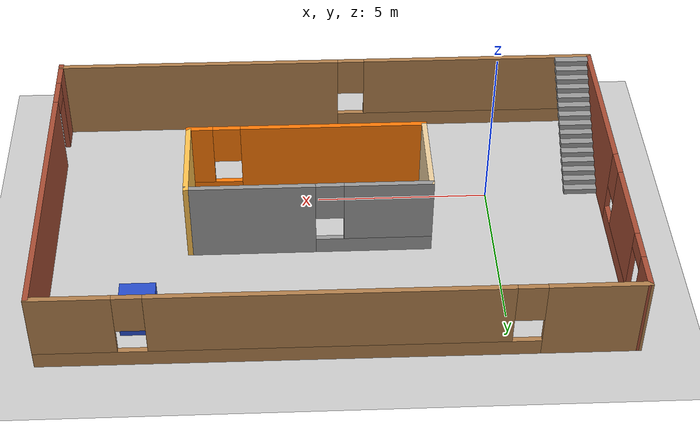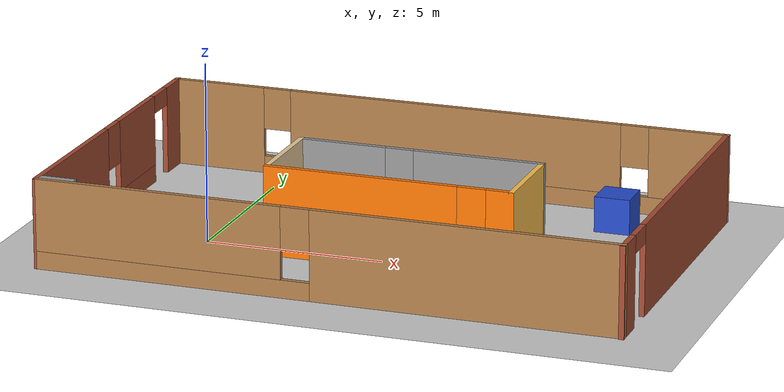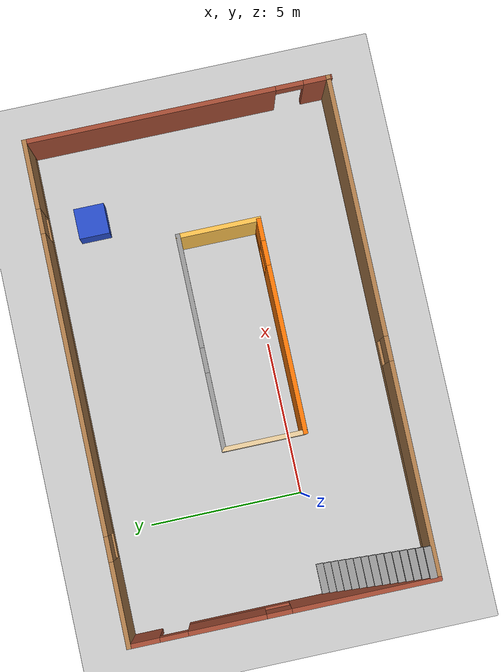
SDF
<sdf version="1.6">
 <world name="default">
  <light name="sun" type="directional">
   <pose>0 0 10 0 -0 0</pose>
   <diffuse>0.8 0.8 0.8 1</diffuse>
   <specular>0.2 0.2 0.2 1</specular>
   <attenuation>
    <range>1000</range>
    <constant>0.9</constant>
    <linear>0.01</linear>
    <quadratic>0.001</quadratic>
   </attenuation>
   <direction>-0.5 0.1 -0.9</direction>
  </light>
  <model name="ground_plane">
   <static>1</static>
   <link name="link">
    <collision name="collision">
     <geometry><plane><normal>0 0 1</normal><size>100 100</size></plane></geometry>
     <surface>
      <contact><collide_bitmask>65535</collide_bitmask></contact>
      <friction><ode><mu>100</mu><mu2>50</mu2></ode></friction>
     </surface>
    </collision>
    <visual name="visual">
     <cast_shadows>0</cast_shadows>
     <geometry><plane><normal>0 0 1</normal><size>100 100</size></plane></geometry>
     <material>
      <script><uri>file://media/materials/scripts/gazebo.material</uri><name>Gazebo/Grey</name></script>
     </material>
    </visual>
   </link>
  </model>
  <gravity>0 0 -9.8</gravity>
  <magnetic_field>6e-06 2.3e-05 -4.2e-05</magnetic_field>
  <atmosphere type="adiabatic"/>
  <physics name="default_physics" default="0" type="ode">
   <max_step_size>0.001</max_step_size>
   <real_time_factor>1</real_time_factor>
   <real_time_update_rate>1000</real_time_update_rate>
  </physics>
  <scene><ambient>0.4 0.4 0.4 1</ambient><background>0.7 0.7 0.7 1</background><shadows>1</shadows></scene>
  <spherical_coordinates>
   <surface_model>EARTH_WGS84</surface_model>
   <latitude_deg>0</latitude_deg>
   <longitude_deg>0</longitude_deg>
   <elevation>0</elevation>
   <heading_deg>0</heading_deg>
  </spherical_coordinates>
  <model name="mySimulatedWorld1">
   <pose>4.6487 1.35243 0 0 -0 0</pose>
   <link name="Stairs_0">
    <visual name="Stairs_0_Visual_0">
     <pose>-7.51944 -1.44614 0.083333 0 -0 0</pose>
     <geometry><box><size>1 0.233333 0.166667</size></box></geometry>
     <material>
      <script><uri>file://media/materials/scripts/gazebo.material</uri><name>Gazebo/Grey</name></script>
      <ambient>1 1 1 1</ambient>
     </material>
     <meta><layer>0</layer></meta>
    </visual>
    <collision name="Stairs_0_Collision_0">
     <geometry><box><size>1 0.233333 0.166667</size></box></geometry>
     <pose>-7.51944 -1.44614 0.083333 0 -0 0</pose>
    </collision>
    <visual name="Stairs_0_Visual_1">
     <pose>-7.51944 -1.67948 0.25 0 -0 0</pose>
     <geometry><box><size>1 0.233333 0.166667</size></box></geometry>
     <material>
      <script><uri>file://media/materials/scripts/gazebo.material</uri><name>Gazebo/Grey</name></script>
      <ambient>1 1 1 1</ambient>
     </material>
     <meta><layer>0</layer></meta>
    </visual>
    <collision name="Stairs_0_Collision_1">
     <geometry><box><size>1 0.233333 0.166667</size></box></geometry>
     <pose>-7.51944 -1.67948 0.25 0 -0 0</pose>
    </collision>
    <visual name="Stairs_0_Visual_2">
     <pose>-7.51944 -1.91281 0.416667 0 -0 0</pose>
     <geometry><box><size>1 0.233333 0.166667</size></box></geometry>
     <material>
      <script><uri>file://media/materials/scripts/gazebo.material</uri><name>Gazebo/Grey</name></script>
      <ambient>1 1 1 1</ambient>
     </material>
     <meta><layer>0</layer></meta>
    </visual>
    <collision name="Stairs_0_Collision_2">
     <geometry><box><size>1 0.233333 0.166667</size></box></geometry>
     <pose>-7.51944 -1.91281 0.416667 0 -0 0</pose>
    </collision>
    <visual name="Stairs_0_Visual_3">
     <pose>-7.51944 -2.14614 0.583333 0 -0 0</pose>
     <geometry><box><size>1 0.233333 0.166667</size></box></geometry>
     <material>
      <script><uri>file://media/materials/scripts/gazebo.material</uri><name>Gazebo/Grey</name></script>
      <ambient>1 1 1 1</ambient>
     </material>
     <meta><layer>0</layer></meta>
    </visual>
    <collision name="Stairs_0_Collision_3">
     <geometry><box><size>1 0.233333 0.166667</size></box></geometry>
     <pose>-7.51944 -2.14614 0.583333 0 -0 0</pose>
    </collision>
    <visual name="Stairs_0_Visual_4">
     <pose>-7.51944 -2.37948 0.75 0 -0 0</pose>
     <geometry><box><size>1 0.233333 0.166667</size></box></geometry>
     <material>
      <script><uri>file://media/materials/scripts/gazebo.material</uri><name>Gazebo/Grey</name></script>
      <ambient>1 1 1 1</ambient>
     </material>
     <meta><layer>0</layer></meta>
    </visual>
    <collision name="Stairs_0_Collision_4">
     <geometry><box><size>1 0.233333 0.166667</size></box></geometry>
     <pose>-7.51944 -2.37948 0.75 0 -0 0</pose>
    </collision>
    <visual name="Stairs_0_Visual_5">
     <pose>-7.51944 -2.61281 0.916667 0 -0 0</pose>
     <geometry><box><size>1 0.233333 0.166667</size></box></geometry>
     <material>
      <script><uri>file://media/materials/scripts/gazebo.material</uri><name>Gazebo/Grey</name></script>
      <ambient>1 1 1 1</ambient>
     </material>
     <meta><layer>0</layer></meta>
    </visual>
    <collision name="Stairs_0_Collision_5">
     <geometry><box><size>1 0.233333 0.166667</size></box></geometry>
     <pose>-7.51944 -2.61281 0.916667 0 -0 0</pose>
    </collision>
    <visual name="Stairs_0_Visual_6">
     <pose>-7.51944 -2.84614 1.08333 0 -0 0</pose>
     <geometry><box><size>1 0.233333 0.166667</size></box></geometry>
     <material>
      <script><uri>file://media/materials/scripts/gazebo.material</uri><name>Gazebo/Grey</name></script>
      <ambient>1 1 1 1</ambient>
     </material>
     <meta><layer>0</layer></meta>
    </visual>
    <collision name="Stairs_0_Collision_6">
     <geometry><box><size>1 0.233333 0.166667</size></box></geometry>
     <pose>-7.51944 -2.84614 1.08333 0 -0 0</pose>
    </collision>
    <visual name="Stairs_0_Visual_7">
     <pose>-7.51944 -3.07948 1.25 0 -0 0</pose>
     <geometry><box><size>1 0.233333 0.166667</size></box></geometry>
     <material>
      <script><uri>file://media/materials/scripts/gazebo.material</uri><name>Gazebo/Grey</name></script>
      <ambient>1 1 1 1</ambient>
     </material>
     <meta><layer>0</layer></meta>
    </visual>
    <collision name="Stairs_0_Collision_7">
     <geometry><box><size>1 0.233333 0.166667</size></box></geometry>
     <pose>-7.51944 -3.07948 1.25 0 -0 0</pose>
    </collision>
    <visual name="Stairs_0_Visual_8">
     <pose>-7.51944 -3.31281 1.41667 0 -0 0</pose>
     <geometry><box><size>1 0.233333 0.166667</size></box></geometry>
     <material>
      <script><uri>file://media/materials/scripts/gazebo.material</uri><name>Gazebo/Grey</name></script>
      <ambient>1 1 1 1</ambient>
     </material>
     <meta><layer>0</layer></meta>
    </visual>
    <collision name="Stairs_0_Collision_8">
     <geometry><box><size>1 0.233333 0.166667</size></box></geometry>
     <pose>-7.51944 -3.31281 1.41667 0 -0 0</pose>
    </collision>
    <visual name="Stairs_0_Visual_9">
     <pose>-7.51944 -3.54614 1.58333 0 -0 0</pose>
     <geometry><box><size>1 0.233333 0.166667</size></box></geometry>
     <material>
      <script><uri>file://media/materials/scripts/gazebo.material</uri><name>Gazebo/Grey</name></script>
      <ambient>1 1 1 1</ambient>
     </material>
     <meta><layer>0</layer></meta>
    </visual>
    <collision name="Stairs_0_Collision_9">
     <geometry><box><size>1 0.233333 0.166667</size></box></geometry>
     <pose>-7.51944 -3.54614 1.58333 0 -0 0</pose>
    </collision>
    <visual name="Stairs_0_Visual_10">
     <pose>-7.51944 -3.77948 1.75 0 -0 0</pose>
     <geometry><box><size>1 0.233333 0.166667</size></box></geometry>
     <material>
      <script><uri>file://media/materials/scripts/gazebo.material</uri><name>Gazebo/Grey</name></script>
      <ambient>1 1 1 1</ambient>
     </material>
     <meta><layer>0</layer></meta>
    </visual>
    <collision name="Stairs_0_Collision_10">
     <geometry><box><size>1 0.233333 0.166667</size></box></geometry>
     <pose>-7.51944 -3.77948 1.75 0 -0 0</pose>
    </collision>
    <visual name="Stairs_0_Visual_11">
     <pose>-7.51944 -4.01281 1.91667 0 -0 0</pose>
     <geometry><box><size>1 0.233333 0.166667</size></box></geometry>
     <material>
      <script><uri>file://media/materials/scripts/gazebo.material</uri><name>Gazebo/Grey</name></script>
      <ambient>1 1 1 1</ambient>
     </material>
     <meta><layer>0</layer></meta>
    </visual>
    <collision name="Stairs_0_Collision_11">
     <geometry><box><size>1 0.233333 0.166667</size></box></geometry>
     <pose>-7.51944 -4.01281 1.91667 0 -0 0</pose>
    </collision>
    <visual name="Stairs_0_Visual_12">
     <pose>-7.51944 -4.24614 2.08333 0 -0 0</pose>
     <geometry><box><size>1 0.233333 0.166667</size></box></geometry>
     <material>
      <script><uri>file://media/materials/scripts/gazebo.material</uri><name>Gazebo/Grey</name></script>
      <ambient>1 1 1 1</ambient>
     </material>
     <meta><layer>0</layer></meta>
    </visual>
    <collision name="Stairs_0_Collision_12">
     <geometry><box><size>1 0.233333 0.166667</size></box></geometry>
     <pose>-7.51944 -4.24614 2.08333 0 -0 0</pose>
    </collision>
    <visual name="Stairs_0_Visual_13">
     <pose>-7.51944 -4.47948 2.25 0 -0 0</pose>
     <geometry><box><size>1 0.233333 0.166667</size></box></geometry>
     <material>
      <script><uri>file://media/materials/scripts/gazebo.material</uri><name>Gazebo/Grey</name></script>
      <ambient>1 1 1 1</ambient>
     </material>
     <meta><layer>0</layer></meta>
    </visual>
    <collision name="Stairs_0_Collision_13">
     <geometry><box><size>1 0.233333 0.166667</size></box></geometry>
     <pose>-7.51944 -4.47948 2.25 0 -0 0</pose>
    </collision>
    <visual name="Stairs_0_Visual_14">
     <pose>-7.51944 -4.71281 2.41667 0 -0 0</pose>
     <geometry><box><size>1 0.233333 0.166667</size></box></geometry>
     <material>
      <script><uri>file://media/materials/scripts/gazebo.material</uri><name>Gazebo/Grey</name></script>
      <ambient>1 1 1 1</ambient>
     </material>
     <meta><layer>0</layer></meta>
    </visual>
    <collision name="Stairs_0_Collision_14">
     <geometry><box><size>1 0.233333 0.166667</size></box></geometry>
     <pose>-7.51944 -4.71281 2.41667 0 -0 0</pose>
    </collision>
   </link>
   <link name="Wall_0">
    <pose>-8.0687 0.042568 0 0 -0 1.5708</pose>
    <visual name="Wall_0_Visual_0">
     <pose>-2.62445 0 1.25 0 -0 0</pose>
     <geometry><box><size>4.75111 0.15 2.5</size></box></geometry>
     <material>
      <script><uri>file://media/materials/scripts/gazebo.material</uri><name>Gazebo/Bricks</name></script>
      <ambient>1 1 1 1</ambient>
     </material>
     <meta><layer>0</layer></meta>
    </visual>
    <collision name="Wall_0_Collision_0">
     <geometry><box><size>4.75111 0.15 2.5</size></box></geometry>
     <pose>-2.62445 0 1.25 0 -0 0</pose>
    </collision>
    <visual name="Wall_0_Visual_1">
     <pose>4.46772 0 1.25 0 -0 0</pose>
     <geometry><box><size>1.06456 0.15 2.5</size></box></geometry>
     <material>
      <script><uri>file://media/materials/scripts/gazebo.material</uri><name>Gazebo/Bricks</name></script>
      <ambient>1 1 1 1</ambient>
     </material>
     <meta><layer>0</layer></meta>
    </visual>
    <collision name="Wall_0_Collision_1">
     <geometry><box><size>1.06456 0.15 2.5</size></box></geometry>
     <pose>4.46772 0 1.25 0 -0 0</pose>
    </collision>
    <visual name="Wall_0_Visual_2">
     <pose>1.39328 0 0.25 0 -0 0</pose>
     <geometry><box><size>3.28434 0.15 0.5</size></box></geometry>
     <material>
      <script><uri>file://media/materials/scripts/gazebo.material</uri><name>Gazebo/Bricks</name></script>
      <ambient>1 1 1 1</ambient>
     </material>
     <meta><layer>0</layer></meta>
    </visual>
    <collision name="Wall_0_Collision_2">
     <geometry><box><size>3.28434 0.15 0.5</size></box></geometry>
     <pose>1.39328 0 0.25 0 -0 0</pose>
    </collision>
    <visual name="Wall_0_Visual_3">
     <pose>1.79328 0 1.5 0 -0 0</pose>
     <geometry><box><size>2.48434 0.15 2</size></box></geometry>
     <material>
      <script><uri>file://media/materials/scripts/gazebo.material</uri><name>Gazebo/Bricks</name></script>
      <ambient>1 1 1 1</ambient>
     </material>
     <meta><layer>0</layer></meta>
    </visual>
    <collision name="Wall_0_Collision_3">
     <geometry><box><size>2.48434 0.15 2</size></box></geometry>
     <pose>1.79328 0 1.5 0 -0 0</pose>
    </collision>
    <visual name="Wall_0_Visual_4">
     <pose>0.151109 0 1.9 0 -0 0</pose>
     <geometry><box><size>0.8 0.15 1.2</size></box></geometry>
     <material>
      <script><uri>file://media/materials/scripts/gazebo.material</uri><name>Gazebo/Bricks</name></script>
      <ambient>1 1 1 1</ambient>
     </material>
     <meta><layer>0</layer></meta>
    </visual>
    <collision name="Wall_0_Collision_4">
     <geometry><box><size>0.8 0.15 1.2</size></box></geometry>
     <pose>0.151109 0 1.9 0 -0 0</pose>
    </collision>
    <visual name="Wall_0_Visual_5">
     <pose>3.48544 0 2.25 0 -0 0</pose>
     <geometry><box><size>0.9 0.15 0.5</size></box></geometry>
     <material>
      <script><uri>file://media/materials/scripts/gazebo.material</uri><name>Gazebo/Bricks</name></script>
      <ambient>1 1 1 1</ambient>
     </material>
     <meta><layer>0</layer></meta>
    </visual>
    <collision name="Wall_0_Collision_5">
     <geometry><box><size>0.9 0.15 0.5</size></box></geometry>
     <pose>3.48544 0 2.25 0 -0 0</pose>
    </collision>
   </link>
   <link name="Wall_1">
    <pose>0 4.94817 0 0 0 -0.002404</pose>
    <visual name="Wall_1_Visual_0">
     <pose>-6.77752 0 1.25 0 -0 0</pose>
     <geometry><box><size>2.73291 0.15 2.5</size></box></geometry>
     <material>
      <script><uri>file://media/materials/scripts/gazebo.material</uri><name>Gazebo/Wood</name></script>
      <ambient>1 1 1 1</ambient>
     </material>
     <meta><layer>0</layer></meta>
    </visual>
    <collision name="Wall_1_Collision_0">
     <geometry><box><size>2.73291 0.15 2.5</size></box></geometry>
     <pose>-6.77752 0 1.25 0 -0 0</pose>
    </collision>
    <visual name="Wall_1_Visual_1">
     <pose>1.36645 0 0.25 0 -0 0</pose>
     <geometry><box><size>13.555 0.15 0.5</size></box></geometry>
     <material>
      <script><uri>file://media/materials/scripts/gazebo.material</uri><name>Gazebo/Wood</name></script>
      <ambient>1 1 1 1</ambient>
     </material>
     <meta><layer>0</layer></meta>
    </visual>
    <collision name="Wall_1_Collision_1">
     <geometry><box><size>13.555 0.15 0.5</size></box></geometry>
     <pose>1.36645 0 0.25 0 -0 0</pose>
    </collision>
    <visual name="Wall_1_Visual_2">
     <pose>0.23529 0 1.5 0 -0 0</pose>
     <geometry><box><size>9.69271 0.15 2</size></box></geometry>
     <material>
      <script><uri>file://media/materials/scripts/gazebo.material</uri><name>Gazebo/Wood</name></script>
      <ambient>1 1 1 1</ambient>
     </material>
     <meta><layer>0</layer></meta>
    </visual>
    <collision name="Wall_1_Collision_2">
     <geometry><box><size>9.69271 0.15 2</size></box></geometry>
     <pose>0.23529 0 1.5 0 -0 0</pose>
    </collision>
    <visual name="Wall_1_Visual_3">
     <pose>7.01281 0 1.5 0 -0 0</pose>
     <geometry><box><size>2.26232 0.15 2</size></box></geometry>
     <material>
      <script><uri>file://media/materials/scripts/gazebo.material</uri><name>Gazebo/Wood</name></script>
      <ambient>1 1 1 1</ambient>
     </material>
     <meta><layer>0</layer></meta>
    </visual>
    <collision name="Wall_1_Collision_3">
     <geometry><box><size>2.26232 0.15 2</size></box></geometry>
     <pose>7.01281 0 1.5 0 -0 0</pose>
    </collision>
    <visual name="Wall_1_Visual_4">
     <pose>-5.01107 0 1.9 0 -0 0</pose>
     <geometry><box><size>0.8 0.15 1.2</size></box></geometry>
     <material>
      <script><uri>file://media/materials/scripts/gazebo.material</uri><name>Gazebo/Wood</name></script>
      <ambient>1 1 1 1</ambient>
     </material>
     <meta><layer>0</layer></meta>
    </visual>
    <collision name="Wall_1_Collision_4">
     <geometry><box><size>0.8 0.15 1.2</size></box></geometry>
     <pose>-5.01107 0 1.9 0 -0 0</pose>
    </collision>
    <visual name="Wall_1_Visual_5">
     <pose>5.48165 0 1.9 0 -0 0</pose>
     <geometry><box><size>0.8 0.15 1.2</size></box></geometry>
     <material>
      <script><uri>file://media/materials/scripts/gazebo.material</uri><name>Gazebo/Wood</name></script>
      <ambient>1 1 1 1</ambient>
     </material>
     <meta><layer>0</layer></meta>
    </visual>
    <collision name="Wall_1_Collision_5">
     <geometry><box><size>0.8 0.15 1.2</size></box></geometry>
     <pose>5.48165 0 1.9 0 -0 0</pose>
    </collision>
   </link>
   <link name="Wall_2">
    <pose>8.0687 -0.042749 0 0 0 -1.5708</pose>
    <visual name="Wall_2_Visual_0">
     <pose>-0.916029 0 1.25 0 -0 0</pose>
     <geometry><box><size>8.16794 0.15 2.5</size></box></geometry>
     <material>
      <script><uri>file://media/materials/scripts/gazebo.material</uri><name>Gazebo/Bricks</name></script>
      <ambient>1 1 1 1</ambient>
     </material>
     <meta><layer>0</layer></meta>
    </visual>
    <collision name="Wall_2_Collision_0">
     <geometry><box><size>8.16794 0.15 2.5</size></box></geometry>
     <pose>-0.916029 0 1.25 0 -0 0</pose>
    </collision>
    <visual name="Wall_2_Visual_1">
     <pose>4.53397 0 1.25 0 -0 0</pose>
     <geometry><box><size>0.932057 0.15 2.5</size></box></geometry>
     <material>
      <script><uri>file://media/materials/scripts/gazebo.material</uri><name>Gazebo/Bricks</name></script>
      <ambient>1 1 1 1</ambient>
     </material>
     <meta><layer>0</layer></meta>
    </visual>
    <collision name="Wall_2_Collision_1">
     <geometry><box><size>0.932057 0.15 2.5</size></box></geometry>
     <pose>4.53397 0 1.25 0 -0 0</pose>
    </collision>
    <visual name="Wall_2_Visual_2">
     <pose>3.61794 0 2.25 0 -0 0</pose>
     <geometry><box><size>0.9 0.15 0.5</size></box></geometry>
     <material>
      <script><uri>file://media/materials/scripts/gazebo.material</uri><name>Gazebo/Bricks</name></script>
      <ambient>1 1 1 1</ambient>
     </material>
     <meta><layer>0</layer></meta>
    </visual>
    <collision name="Wall_2_Collision_2">
     <geometry><box><size>0.9 0.15 0.5</size></box></geometry>
     <pose>3.61794 0 2.25 0 -0 0</pose>
    </collision>
   </link>
   <link name="Wall_3">
    <pose>0 -4.90183 0 0 -0 3.13919</pose>
    <visual name="Wall_3_Visual_0">
     <pose>-3.89247 0 1.25 0 -0 0</pose>
     <geometry><box><size>8.50301 0.15 2.5</size></box></geometry>
     <material>
      <script><uri>file://media/materials/scripts/gazebo.material</uri><name>Gazebo/Wood</name></script>
      <ambient>1 1 1 1</ambient>
     </material>
     <meta><layer>0</layer></meta>
    </visual>
    <collision name="Wall_3_Collision_0">
     <geometry><box><size>8.50301 0.15 2.5</size></box></geometry>
     <pose>-3.89247 0 1.25 0 -0 0</pose>
    </collision>
    <visual name="Wall_3_Visual_1">
     <pose>4.2515 0 0.25 0 -0 0</pose>
     <geometry><box><size>7.78493 0.15 0.5</size></box></geometry>
     <material>
      <script><uri>file://media/materials/scripts/gazebo.material</uri><name>Gazebo/Wood</name></script>
      <ambient>1 1 1 1</ambient>
     </material>
     <meta><layer>0</layer></meta>
    </visual>
    <collision name="Wall_3_Collision_1">
     <geometry><box><size>7.78493 0.15 0.5</size></box></geometry>
     <pose>4.2515 0 0.25 0 -0 0</pose>
    </collision>
    <visual name="Wall_3_Visual_2">
     <pose>4.6515 0 1.5 0 -0 0</pose>
     <geometry><box><size>6.98493 0.15 2</size></box></geometry>
     <material>
      <script><uri>file://media/materials/scripts/gazebo.material</uri><name>Gazebo/Wood</name></script>
      <ambient>1 1 1 1</ambient>
     </material>
     <meta><layer>0</layer></meta>
    </visual>
    <collision name="Wall_3_Collision_2">
     <geometry><box><size>6.98493 0.15 2</size></box></geometry>
     <pose>4.6515 0 1.5 0 -0 0</pose>
    </collision>
    <visual name="Wall_3_Visual_3">
     <pose>0.759036 0 1.9 0 -0 0</pose>
     <geometry><box><size>0.8 0.15 1.2</size></box></geometry>
     <material>
      <script><uri>file://media/materials/scripts/gazebo.material</uri><name>Gazebo/Wood</name></script>
      <ambient>1 1 1 1</ambient>
     </material>
     <meta><layer>0</layer></meta>
    </visual>
    <collision name="Wall_3_Collision_3">
     <geometry><box><size>0.8 0.15 1.2</size></box></geometry>
     <pose>0.759036 0 1.9 0 -0 0</pose>
    </collision>
   </link>
   <link name="Wall_5">
    <collision name="Wall_5_Collision">
     <geometry><box><size>2.75 0.15 2.5</size></box></geometry>
     <pose>0 0 1.25 0 -0 0</pose>
    </collision>
    <visual name="Wall_5_Visual">
     <pose>0 0 1.25 0 -0 0</pose>
     <geometry><box><size>2.75 0.15 2.5</size></box></geometry>
     <material>
      <script><uri>file://media/materials/scripts/gazebo.material</uri><name>Gazebo/Grey</name></script>
      <ambient>0.921569 0.807843 0.615686 1</ambient>
     </material>
     <meta><layer>0</layer></meta>
    </visual>
    <pose>-2.74736 -0.494518 0 0 0 -1.5708</pose>
   </link>
   <link name="Wall_6">
    <pose>0.677639 -1.79452 0 0 -0 0</pose>
    <visual name="Wall_6_Visual_0">
     <pose>-0.787018 0 1.25 0 -0 0</pose>
     <geometry><box><size>5.42596 0.15 2.5</size></box></geometry>
     <material>
      <script><uri>file://media/materials/scripts/gazebo.material</uri><name>Gazebo/Grey</name></script>
      <ambient>0.996078 0.47451 0.0196078 1</ambient>
     </material>
     <meta><layer>0</layer></meta>
    </visual>
    <collision name="Wall_6_Collision_0">
     <geometry><box><size>5.42596 0.15 2.5</size></box></geometry>
     <pose>-0.787018 0 1.25 0 -0 0</pose>
    </collision>
    <visual name="Wall_6_Visual_1">
     <pose>2.71298 0 0.25 0 -0 0</pose>
     <geometry><box><size>1.57404 0.15 0.5</size></box></geometry>
     <material>
      <script><uri>file://media/materials/scripts/gazebo.material</uri><name>Gazebo/Grey</name></script>
      <ambient>0.996078 0.47451 0.0196078 1</ambient>
     </material>
     <meta><layer>0</layer></meta>
    </visual>
    <collision name="Wall_6_Collision_1">
     <geometry><box><size>1.57404 0.15 0.5</size></box></geometry>
     <pose>2.71298 0 0.25 0 -0 0</pose>
    </collision>
    <visual name="Wall_6_Visual_2">
     <pose>3.11298 0 1.5 0 -0 0</pose>
     <geometry><box><size>0.774037 0.15 2</size></box></geometry>
     <material>
      <script><uri>file://media/materials/scripts/gazebo.material</uri><name>Gazebo/Grey</name></script>
      <ambient>0.996078 0.47451 0.0196078 1</ambient>
     </material>
     <meta><layer>0</layer></meta>
    </visual>
    <collision name="Wall_6_Collision_2">
     <geometry><box><size>0.774037 0.15 2</size></box></geometry>
     <pose>3.11298 0 1.5 0 -0 0</pose>
    </collision>
    <visual name="Wall_6_Visual_3">
     <pose>2.32596 0 1.9 0 -0 0</pose>
     <geometry><box><size>0.8 0.15 1.2</size></box></geometry>
     <material>
      <script><uri>file://media/materials/scripts/gazebo.material</uri><name>Gazebo/Grey</name></script>
      <ambient>0.996078 0.47451 0.0196078 1</ambient>
     </material>
     <meta><layer>0</layer></meta>
    </visual>
    <collision name="Wall_6_Collision_3">
     <geometry><box><size>0.8 0.15 1.2</size></box></geometry>
     <pose>2.32596 0 1.9 0 -0 0</pose>
    </collision>
   </link>
   <link name="Wall_7">
    <collision name="Wall_7_Collision">
     <geometry><box><size>2.75 0.15 2.5</size></box></geometry>
     <pose>0 0 1.25 0 -0 0</pose>
    </collision>
    <visual name="Wall_7_Visual">
     <pose>0 0 1.25 0 -0 0</pose>
     <geometry><box><size>2.75 0.15 2.5</size></box></geometry>
     <material>
      <script><uri>file://media/materials/scripts/gazebo.material</uri><name>Gazebo/Grey</name></script>
      <ambient>1 0.764706 0.305882 1</ambient>
     </material>
     <meta><layer>0</layer></meta>
    </visual>
    <pose>4.10264 -0.494518 0 0 -0 1.5708</pose>
   </link>
   <link name="Wall_8">
    <pose>0.677639 0.805482 0 0 -0 3.14159</pose>
    <visual name="Wall_8_Visual_0">
     <pose>-1.65995 0 1.25 0 -0 0</pose>
     <geometry><box><size>3.68011 0.15 2.5</size></box></geometry>
     <material>
      <script><uri>file://media/materials/scripts/gazebo.material</uri><name>Gazebo/Grey</name></script>
      <ambient>1 1 1 1</ambient>
     </material>
     <meta><layer>0</layer></meta>
    </visual>
    <collision name="Wall_8_Collision_0">
     <geometry><box><size>3.68011 0.15 2.5</size></box></geometry>
     <pose>-1.65995 0 1.25 0 -0 0</pose>
    </collision>
    <visual name="Wall_8_Visual_1">
     <pose>1.84005 0 0.25 0 -0 0</pose>
     <geometry><box><size>3.31989 0.15 0.5</size></box></geometry>
     <material>
      <script><uri>file://media/materials/scripts/gazebo.material</uri><name>Gazebo/Grey</name></script>
      <ambient>1 1 1 1</ambient>
     </material>
     <meta><layer>0</layer></meta>
    </visual>
    <collision name="Wall_8_Collision_1">
     <geometry><box><size>3.31989 0.15 0.5</size></box></geometry>
     <pose>1.84005 0 0.25 0 -0 0</pose>
    </collision>
    <visual name="Wall_8_Visual_2">
     <pose>2.24005 0 1.5 0 -0 0</pose>
     <geometry><box><size>2.51989 0.15 2</size></box></geometry>
     <material>
      <script><uri>file://media/materials/scripts/gazebo.material</uri><name>Gazebo/Grey</name></script>
      <ambient>1 1 1 1</ambient>
     </material>
     <meta><layer>0</layer></meta>
    </visual>
    <collision name="Wall_8_Collision_2">
     <geometry><box><size>2.51989 0.15 2</size></box></geometry>
     <pose>2.24005 0 1.5 0 -0 0</pose>
    </collision>
    <visual name="Wall_8_Visual_3">
     <pose>0.580109 0 1.9 0 -0 0</pose>
     <geometry><box><size>0.8 0.15 1.2</size></box></geometry>
     <material>
      <script><uri>file://media/materials/scripts/gazebo.material</uri><name>Gazebo/Grey</name></script>
      <ambient>1 1 1 1</ambient>
     </material>
     <meta><layer>0</layer></meta>
    </visual>
    <collision name="Wall_8_Collision_3">
     <geometry><box><size>0.8 0.15 1.2</size></box></geometry>
     <pose>0.580109 0 1.9 0 -0 0</pose>
    </collision>
   </link>
   <static>1</static>
  </model>
  <model name="unit_box">
   <link name="link">
    <inertial>
     <mass>1</mass>
     <inertia>
      <ixx>0.166667</ixx>
      <ixy>0</ixy>
      <ixz>0</ixz>
      <iyy>0.166667</iyy>
      <iyz>0</iyz>
      <izz>0.166667</izz>
     </inertia>
    </inertial>
    <visual name="visual">
     <geometry><box><size>1 1 1</size></box></geometry>
     <material>
      <script><name>Gazebo/Blue</name><uri>file://media/materials/scripts/gazebo.material</uri></script>
      <shader type="pixel"><normal_map>__default__</normal_map></shader>
      <ambient>0.3 0.3 0.3 1</ambient>
      <diffuse>0.7 0.7 0.7 1</diffuse>
      <specular>0.01 0.01 0.01 1</specular>
      <emissive>0 0 0 1</emissive>
     </material>
    </visual>
    <collision name="collision">
     <geometry><box><size>1 1 1</size></box></geometry>
     <surface>
      <friction>
       <ode><mu>1</mu><mu2>1</mu2><fdir1>0 0 0</fdir1><slip1>0</slip1><slip2>0</slip2></ode>
       <torsional>
        <coefficient>1</coefficient>
        <patch_radius>0</patch_radius>
        <surface_radius>0</surface_radius>
        <use_patch_radius>1</use_patch_radius>
        <ode><slip>0</slip></ode>
       </torsional>
      </friction>
      <bounce><restitution_coefficient>0</restitution_coefficient><threshold>1e+06</threshold></bounce>
      <contact>
       <collide_without_contact>0</collide_without_contact>
       <collide_without_contact_bitmask>1</collide_without_contact_bitmask>
       <collide_bitmask>1</collide_bitmask>
       <ode>
        <soft_cfm>0</soft_cfm>
        <soft_erp>0.2</soft_erp>
        <kp>1e+13</kp>
        <kd>1</kd>
        <max_vel>0.01</max_vel>
        <min_depth>0</min_depth>
       </ode>
       <bullet>
        <split_impulse>1</split_impulse>
        <split_impulse_penetration_threshold>-0.01</split_impulse_penetration_threshold>
        <soft_cfm>0</soft_cfm>
        <soft_erp>0.2</soft_erp>
        <kp>1e+13</kp>
        <kd>1</kd>
       </bullet>
      </contact>
     </surface>
    </collision>
   </link>
   <static>0</static>
   <pose>10.0759 4.80594 0.5 0 -0 0</pose>
  </model>
 </world>
</sdf>
